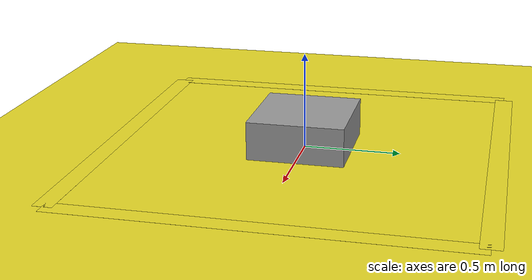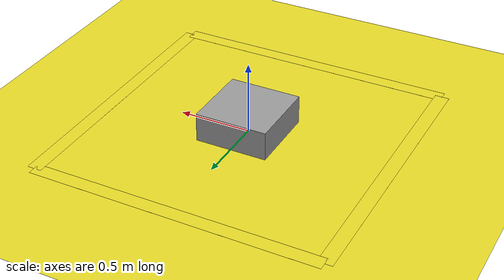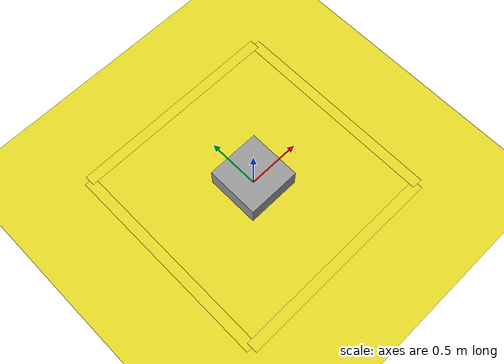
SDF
<sdf version="1.7">
 <world name="default">
  <model name="ground_plane">
   <static>1</static>
   <link name="link">
    <collision name="collision">
     <geometry><plane><normal>0 0 1</normal><size>100 100</size></plane></geometry>
     <surface>
      <contact><collide_bitmask>65535</collide_bitmask></contact>
      <friction><ode><mu>100</mu><mu2>50</mu2></ode></friction>
     </surface>
    </collision>
    <visual name="visual">
     <cast_shadows>0</cast_shadows>
     <geometry><plane><normal>0 0 1</normal><size>100 100</size></plane></geometry>
     <material>
      <script><uri>file://media/materials/scripts/gazebo.material</uri><name>Gazebo/Yellow</name></script>
     </material>
    </visual>
   </link>
  </model>
  <model name="yellow line_1">
   <static>1</static>
   <link name="link_ground">
    <collision name="collision">
     <geometry><plane><normal>0 0 1</normal><size>0.1 2</size></plane></geometry>
     <surface><friction><ode><mu>100</mu><mu2>50</mu2></ode></friction></surface>
    </collision>
    <visual name="visual_ground">
     <cast_shadows>0</cast_shadows>
     <geometry><plane><normal>0 0 1</normal><size>0.1 2</size></plane></geometry>
     <material>
      <script><uri>file://media/materials/scripts/gazebo.material</uri><name>Gazebo/Yellow</name></script>
     </material>
    </visual>
   </link>
   <pose>1 0 0 0 -0 0</pose>
  </model>
  <model name="yellow line_2">
   <static>1</static>
   <link name="link_ground">
    <collision name="collision">
     <geometry><plane><normal>0 0 1</normal><size>0.1 2</size></plane></geometry>
     <surface><friction><ode><mu>100</mu><mu2>50</mu2></ode></friction></surface>
    </collision>
    <visual name="visual_ground">
     <cast_shadows>0</cast_shadows>
     <geometry><plane><normal>0 0 1</normal><size>0.1 2</size></plane></geometry>
     <material>
      <script><uri>file://media/materials/scripts/gazebo.material</uri><name>Gazebo/Yellow</name></script>
     </material>
    </visual>
   </link>
   <pose>-1 0 0 0 -0 0</pose>
  </model>
  <model name="yellow line_3">
   <static>1</static>
   <link name="link_ground">
    <collision name="collision">
     <geometry><plane><normal>0 0 1</normal><size>0.1 2</size></plane></geometry>
     <surface><friction><ode><mu>100</mu><mu2>50</mu2></ode></friction></surface>
    </collision>
    <visual name="visual_ground">
     <cast_shadows>0</cast_shadows>
     <geometry><plane><normal>0 0 1</normal><size>2 0.1</size></plane></geometry>
     <material>
      <script><uri>file://media/materials/scripts/gazebo.material</uri><name>Gazebo/Yellow</name></script>
     </material>
    </visual>
   </link>
   <pose>0 1 0 0 -0 0</pose>
  </model>
  <model name="yellow line_4">
   <static>1</static>
   <link name="link_ground">
    <collision name="collision">
     <geometry><plane><normal>0 0 1</normal><size>0.1 2</size></plane></geometry>
     <surface><friction><ode><mu>100</mu><mu2>50</mu2></ode></friction></surface>
    </collision>
    <visual name="visual_ground">
     <cast_shadows>0</cast_shadows>
     <geometry><plane><normal>0 0 1</normal><size>2 0.1</size></plane></geometry>
     <material>
      <script><uri>file://media/materials/scripts/gazebo.material</uri><name>Gazebo/Yellow</name></script>
     </material>
    </visual>
   </link>
   <pose>0 -1 0 0 -0 0</pose>
  </model>
  <gravity>0 0 -9.8</gravity>
  <magnetic_field>6e-06 2.3e-05 -4.2e-05</magnetic_field>
  <atmosphere type="adiabatic"/>
  <physics type="ode">
   <max_step_size>0.001</max_step_size>
   <real_time_factor>1</real_time_factor>
   <real_time_update_rate>1000</real_time_update_rate>
  </physics>
  <scene><ambient>0.4 0.4 0.4 1</ambient><background>0.7 0.7 0.7 1</background><shadows>1</shadows></scene>
  <spherical_coordinates>
   <surface_model>EARTH_WGS84</surface_model>
   <latitude_deg>0</latitude_deg>
   <longitude_deg>0</longitude_deg>
   <elevation>0</elevation>
   <heading_deg>0</heading_deg>
  </spherical_coordinates>
  <model name="unit_box">
   <pose>1e-06 1e-06 0.099994 -8e-06 8e-06 -0</pose>
   <link name="link">
    <inertial>
     <mass>1</mass>
     <inertia>
      <ixx>0.166667</ixx>
      <ixy>0</ixy>
      <ixz>0</ixz>
      <iyy>0.166667</iyy>
      <iyz>0</iyz>
      <izz>0.166667</izz>
     </inertia>
    </inertial>
    <collision name="collision"><geometry><box><size>0.5 0.5 0.2</size></box></geometry></collision>
    <visual name="visual">
     <geometry><box><size>0.5 0.5 0.2</size></box></geometry>
     <material>
      <script><name>Gazebo/Grey</name><uri>file://media/materials/scripts/gazebo.material</uri></script>
     </material>
    </visual>
   </link>
  </model>
  <light name="user_spot_light_0" type="spot">
   <pose>-2.35608 0.290251 1 0 -0 0</pose>
   <diffuse>0.5 0.5 0.5 1</diffuse>
   <specular>0.1 0.1 0.1 1</specular>
   <direction>0 0 -1</direction>
   <attenuation>
    <range>20</range>
    <constant>0.5</constant>
    <linear>0.01</linear>
    <quadratic>0.001</quadratic>
   </attenuation>
   <cast_shadows>0</cast_shadows>
   <spot><inner_angle>0.6</inner_angle><outer_angle>1</outer_angle><falloff>1</falloff></spot>
  </light>
 </world>
</sdf>
